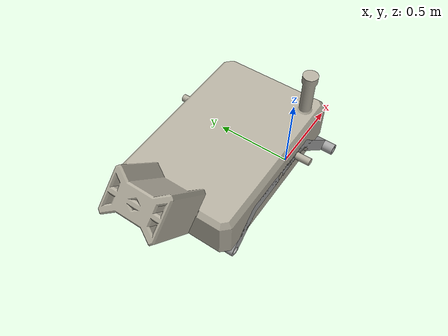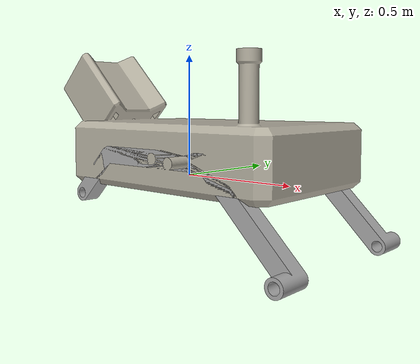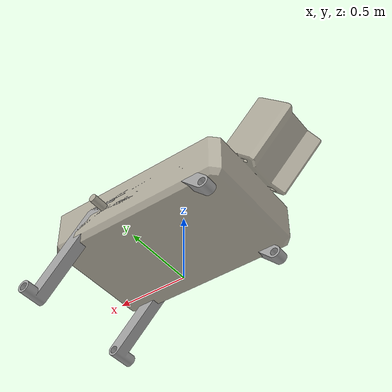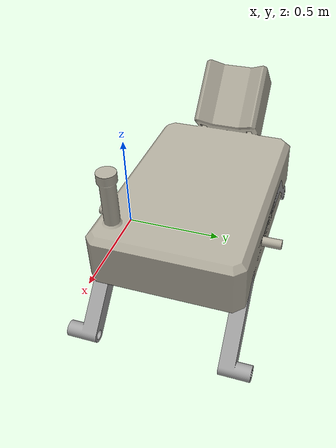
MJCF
<?xml version="1.0" ?>
<!-- Generated using onshape-to-robot -->
<!-- Onshape https://cad.onshape.com/documents/f6c131e0b382b911c5ad04b8/w/5d462194037e095bafb1c40a/e/775f3571fb1d72b5a3aa46b8 -->
<mujoco model="C:\Users\r.canovas\REPOS\RoveX-Lab\my-robot">
  <compiler angle="radian" meshdir="assets" autolimits="true"/>
  <default>
    <default class="C:\Users\r.canovas\REPOS\RoveX-Lab\my-robot">
      <joint frictionloss="0.1" armature="0.005"/>
      <position kp="50" dampratio="1"/>
      <default class="visual">
        <geom type="mesh" contype="0" conaffinity="0" group="2"/>
      </default>
      <default class="collision">
        <geom group="3"/>
      </default>
    </default>
  </default>
  <worldbody>
    <!-- Link chassis -->
    <body name="chassis" pos="0 0 0" quat="1 0 0 0" childclass="C:\Users\r.canovas\REPOS\RoveX-Lab\my-robot">
      <inertial pos="-0.129578 0.342135 0.0478285" mass="814.758" fullinertia="43.4772 103.696 123.607 -1.77636e-14 3.29761 1.62093e-14"/>
      <!-- Part chassis -->
      <geom type="mesh" class="visual" pos="-0.17145 0.342135 0.0616818" quat="1 0 0 0" mesh="chassis" material="chassis_material"/>
      <geom type="mesh" class="collision" pos="-0.17145 0.342135 0.0616818" quat="1 0 0 0" mesh="chassis" material="chassis_material"/>
      <!-- Part rocker_arm_left -->
      <geom type="mesh" class="visual" pos="-0.17145 0.342135 0.0616818" quat="1 0 0 0" mesh="rocker_arm_left" material="rocker_arm_left_material"/>
      <geom type="mesh" class="collision" pos="-0.17145 0.342135 0.0616818" quat="1 0 0 0" mesh="rocker_arm_left" material="rocker_arm_left_material"/>
      <!-- Part rocker_arm_right -->
      <geom type="mesh" class="visual" pos="-0.17145 0.342135 0.0616818" quat="1 0 0 0" mesh="rocker_arm_right" material="rocker_arm_right_material"/>
      <geom type="mesh" class="collision" pos="-0.17145 0.342135 0.0616818" quat="1 0 0 0" mesh="rocker_arm_right" material="rocker_arm_right_material"/>
    </body>
  </worldbody>
  <asset>
    <mesh file="rocker_arm_right.stl"/>
    <mesh file="chassis.stl"/>
    <mesh file="rocker_arm_left.stl"/>
    <material name="chassis_material" rgba="0.701961 0.682353 0.623529 1"/>
    <material name="rocker_arm_left_material" rgba="0.647059 0.647059 0.647059 1"/>
    <material name="rocker_arm_right_material" rgba="0.647059 0.647059 0.647059 1"/>
  </asset>
  <actuator/>
  <equality/>
</mujoco>
